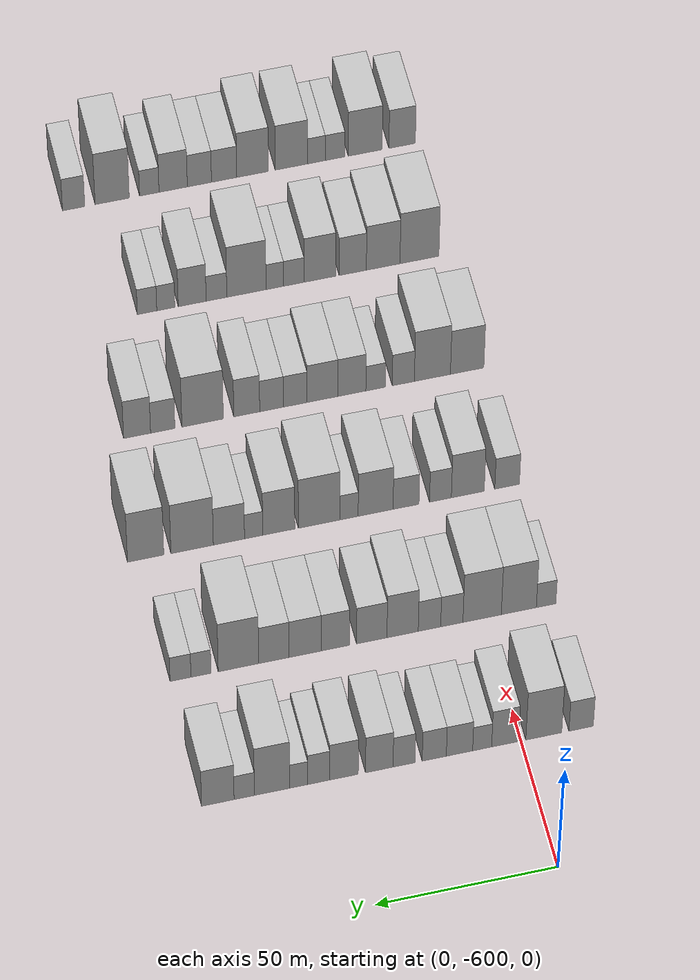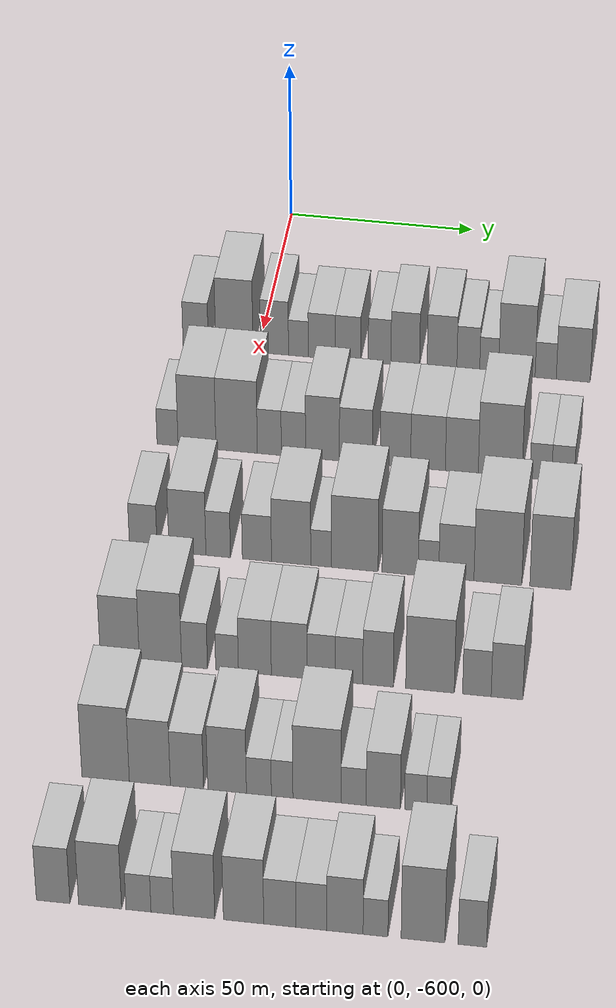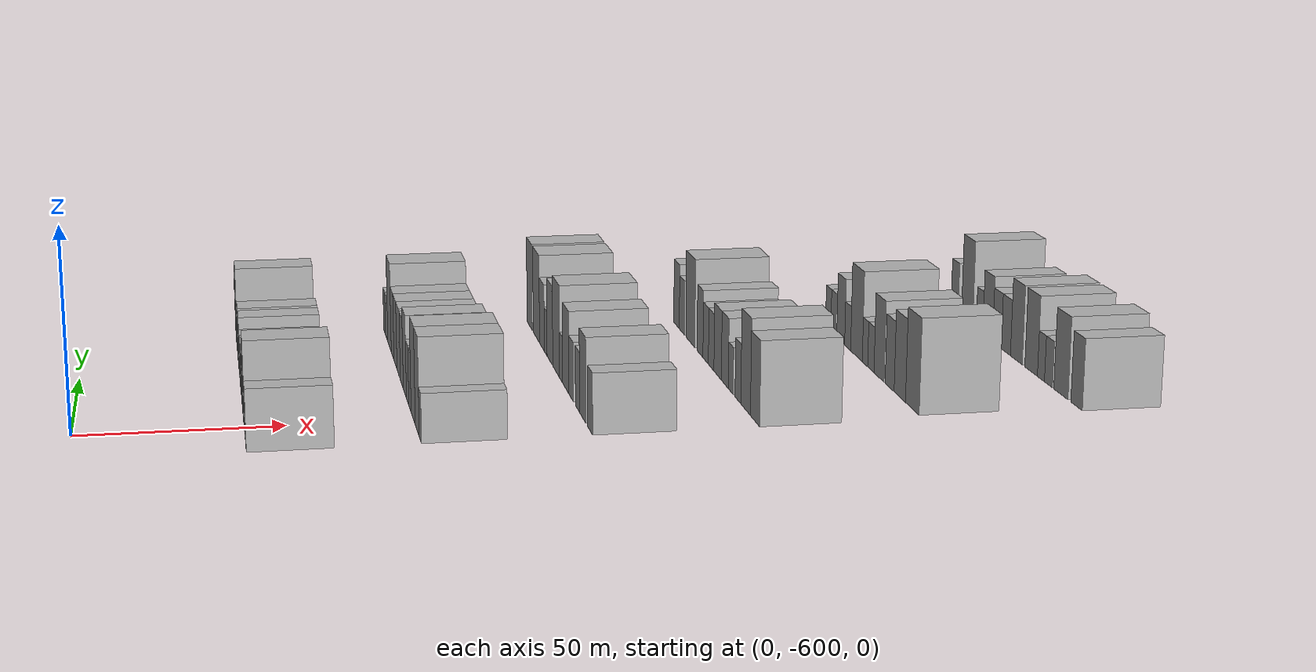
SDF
<sdf version="1.6">
 <world name="default">
  <model name="building_1">
   <static>1</static>
   <pose>50.0000 -616.6186 0 0.000000 0.000000 0.000000</pose>
   <link name="link">
    <pose>0 0 7.50 0 0 0</pose>
    <collision name="collision"><geometry><box><size>20.0000 6.7628 15.0000</size></box></geometry></collision>
    <visual name="visual">
     <cast_shadows>0</cast_shadows>
     <geometry><box><size>20.0000 6.7628 15.0000</size></box></geometry>
     <material>
      <script>
       <uri>model://HANNAS_wall/materials/scripts</uri>
       <uri>model://HANNAS_wall/materials/textures</uri>
       <name>vrc/HANNAS_wall</name>
      </script>
     </material>
    </visual>
   </link>
  </model>
  <model name="building_2">
   <static>1</static>
   <pose>50.0000 -606.2549 0 0.000000 0.000000 0.000000</pose>
   <link name="link">
    <pose>0 0 12.00 0 0 0</pose>
    <collision name="collision"><geometry><box><size>20.0000 9.9646 24.0000</size></box></geometry></collision>
    <visual name="visual">
     <cast_shadows>0</cast_shadows>
     <geometry><box><size>20.0000 9.9646 24.0000</size></box></geometry>
     <material>
      <script>
       <uri>model://HANNAS_wall/materials/scripts</uri>
       <uri>model://HANNAS_wall/materials/textures</uri>
       <name>vrc/HANNAS_wall</name>
      </script>
     </material>
    </visual>
   </link>
  </model>
  <model name="building_3">
   <static>1</static>
   <pose>50.0000 -595.5343 0 0.000000 0.000000 0.000000</pose>
   <link name="link">
    <pose>0 0 9.00 0 0 0</pose>
    <collision name="collision"><geometry><box><size>20.0000 7.4766 18.0000</size></box></geometry></collision>
    <visual name="visual">
     <cast_shadows>0</cast_shadows>
     <geometry><box><size>20.0000 7.4766 18.0000</size></box></geometry>
     <material>
      <script>
       <uri>model://HANNAS_wall/materials/scripts</uri>
       <uri>model://HANNAS_wall/materials/textures</uri>
       <name>vrc/HANNAS_wall</name>
      </script>
     </material>
    </visual>
   </link>
  </model>
  <model name="building_4">
   <static>1</static>
   <pose>50.0000 -589.1701 0 0.000000 0.000000 0.000000</pose>
   <link name="link">
    <pose>0 0 6.00 0 0 0</pose>
    <collision name="collision"><geometry><box><size>20.0000 5.2517 12.0000</size></box></geometry></collision>
    <visual name="visual">
     <cast_shadows>0</cast_shadows>
     <geometry><box><size>20.0000 5.2517 12.0000</size></box></geometry>
     <material>
      <script>
       <uri>model://HANNAS_wall/materials/scripts</uri>
       <uri>model://HANNAS_wall/materials/textures</uri>
       <name>vrc/HANNAS_wall</name>
      </script>
     </material>
    </visual>
   </link>
  </model>
  <model name="building_5">
   <static>1</static>
   <pose>50.0000 -582.9045 0 0.000000 0.000000 0.000000</pose>
   <link name="link">
    <pose>0 0 7.50 0 0 0</pose>
    <collision name="collision"><geometry><box><size>20.0000 7.2797 15.0000</size></box></geometry></collision>
    <visual name="visual">
     <cast_shadows>0</cast_shadows>
     <geometry><box><size>20.0000 7.2797 15.0000</size></box></geometry>
     <material>
      <script>
       <uri>model://HANNAS_wall/materials/scripts</uri>
       <uri>model://HANNAS_wall/materials/textures</uri>
       <name>vrc/HANNAS_wall</name>
      </script>
     </material>
    </visual>
   </link>
  </model>
  <model name="building_6">
   <static>1</static>
   <pose>50.0000 -575.9274 0 0.000000 0.000000 0.000000</pose>
   <link name="link">
    <pose>0 0 7.50 0 0 0</pose>
    <collision name="collision"><geometry><box><size>20.0000 6.6745 15.0000</size></box></geometry></collision>
    <visual name="visual">
     <cast_shadows>0</cast_shadows>
     <geometry><box><size>20.0000 6.6745 15.0000</size></box></geometry>
     <material>
      <script>
       <uri>model://HANNAS_wall/materials/scripts</uri>
       <uri>model://HANNAS_wall/materials/textures</uri>
       <name>vrc/HANNAS_wall</name>
      </script>
     </material>
    </visual>
   </link>
  </model>
  <model name="building_7">
   <static>1</static>
   <pose>50.0000 -567.5688 0 0.000000 0.000000 0.000000</pose>
   <link name="link">
    <pose>0 0 7.50 0 0 0</pose>
    <collision name="collision"><geometry><box><size>20.0000 6.0427 15.0000</size></box></geometry></collision>
    <visual name="visual">
     <cast_shadows>0</cast_shadows>
     <geometry><box><size>20.0000 6.0427 15.0000</size></box></geometry>
     <material>
      <script>
       <uri>model://HANNAS_wall/materials/scripts</uri>
       <uri>model://HANNAS_wall/materials/textures</uri>
       <name>vrc/HANNAS_wall</name>
      </script>
     </material>
    </visual>
   </link>
  </model>
  <model name="building_8">
   <static>1</static>
   <pose>50.0000 -560.7549 0 0.000000 0.000000 0.000000</pose>
   <link name="link">
    <pose>0 0 9.00 0 0 0</pose>
    <collision name="collision"><geometry><box><size>20.0000 7.5851 18.0000</size></box></geometry></collision>
    <visual name="visual">
     <cast_shadows>0</cast_shadows>
     <geometry><box><size>20.0000 7.5851 18.0000</size></box></geometry>
     <material>
      <script>
       <uri>model://HANNAS_wall/materials/scripts</uri>
       <uri>model://HANNAS_wall/materials/textures</uri>
       <name>vrc/HANNAS_wall</name>
      </script>
     </material>
    </visual>
   </link>
  </model>
  <model name="building_9">
   <static>1</static>
   <pose>50.0000 -551.0288 0 0.000000 0.000000 0.000000</pose>
   <link name="link">
    <pose>0 0 9.00 0 0 0</pose>
    <collision name="collision"><geometry><box><size>20.0000 7.8670 18.0000</size></box></geometry></collision>
    <visual name="visual">
     <cast_shadows>0</cast_shadows>
     <geometry><box><size>20.0000 7.8670 18.0000</size></box></geometry>
     <material>
      <script>
       <uri>model://HANNAS_wall/materials/scripts</uri>
       <uri>model://HANNAS_wall/materials/textures</uri>
       <name>vrc/HANNAS_wall</name>
      </script>
     </material>
    </visual>
   </link>
  </model>
  <model name="building_10">
   <static>1</static>
   <pose>50.0000 -544.0765 0 0.000000 0.000000 0.000000</pose>
   <link name="link">
    <pose>0 0 7.50 0 0 0</pose>
    <collision name="collision"><geometry><box><size>20.0000 6.0376 15.0000</size></box></geometry></collision>
    <visual name="visual">
     <cast_shadows>0</cast_shadows>
     <geometry><box><size>20.0000 6.0376 15.0000</size></box></geometry>
     <material>
      <script>
       <uri>model://HANNAS_wall/materials/scripts</uri>
       <uri>model://HANNAS_wall/materials/textures</uri>
       <name>vrc/HANNAS_wall</name>
      </script>
     </material>
    </visual>
   </link>
  </model>
  <model name="building_11">
   <static>1</static>
   <pose>50.0000 -538.5596 0 0.000000 0.000000 0.000000</pose>
   <link name="link">
    <pose>0 0 6.00 0 0 0</pose>
    <collision name="collision"><geometry><box><size>20.0000 4.9962 12.0000</size></box></geometry></collision>
    <visual name="visual">
     <cast_shadows>0</cast_shadows>
     <geometry><box><size>20.0000 4.9962 12.0000</size></box></geometry>
     <material>
      <script>
       <uri>model://HANNAS_wall/materials/scripts</uri>
       <uri>model://HANNAS_wall/materials/textures</uri>
       <name>vrc/HANNAS_wall</name>
      </script>
     </material>
    </visual>
   </link>
  </model>
  <model name="building_12">
   <static>1</static>
   <pose>50.0000 -531.2493 0 0.000000 0.000000 0.000000</pose>
   <link name="link">
    <pose>0 0 12.00 0 0 0</pose>
    <collision name="collision"><geometry><box><size>20.0000 9.6245 24.0000</size></box></geometry></collision>
    <visual name="visual">
     <cast_shadows>0</cast_shadows>
     <geometry><box><size>20.0000 9.6245 24.0000</size></box></geometry>
     <material>
      <script>
       <uri>model://HANNAS_wall/materials/scripts</uri>
       <uri>model://HANNAS_wall/materials/textures</uri>
       <name>vrc/HANNAS_wall</name>
      </script>
     </material>
    </visual>
   </link>
  </model>
  <model name="building_13">
   <static>1</static>
   <pose>50.0000 -523.6492 0 0.000000 0.000000 0.000000</pose>
   <link name="link">
    <pose>0 0 6.00 0 0 0</pose>
    <collision name="collision"><geometry><box><size>20.0000 5.5758 12.0000</size></box></geometry></collision>
    <visual name="visual">
     <cast_shadows>0</cast_shadows>
     <geometry><box><size>20.0000 5.5758 12.0000</size></box></geometry>
     <material>
      <script>
       <uri>model://HANNAS_wall/materials/scripts</uri>
       <uri>model://HANNAS_wall/materials/textures</uri>
       <name>vrc/HANNAS_wall</name>
      </script>
     </material>
    </visual>
   </link>
  </model>
  <model name="building_14">
   <static>1</static>
   <pose>50.0000 -516.4085 0 0.000000 0.000000 0.000000</pose>
   <link name="link">
    <pose>0 0 9.00 0 0 0</pose>
    <collision name="collision"><geometry><box><size>20.0000 8.9057 18.0000</size></box></geometry></collision>
    <visual name="visual">
     <cast_shadows>0</cast_shadows>
     <geometry><box><size>20.0000 8.9057 18.0000</size></box></geometry>
     <material>
      <script>
       <uri>model://HANNAS_wall/materials/scripts</uri>
       <uri>model://HANNAS_wall/materials/textures</uri>
       <name>vrc/HANNAS_wall</name>
      </script>
     </material>
    </visual>
   </link>
  </model>
  <model name="building_136">
   <static>1</static>
   <pose>90.0000 -617.2588 0 0.000000 0.000000 0.000000</pose>
   <link name="link">
    <pose>0 0 6.00 0 0 0</pose>
    <collision name="collision"><geometry><box><size>20.0000 5.4825 12.0000</size></box></geometry></collision>
    <visual name="visual">
     <cast_shadows>0</cast_shadows>
     <geometry><box><size>20.0000 5.4825 12.0000</size></box></geometry>
     <material>
      <script>
       <uri>model://HANNAS_wall/materials/scripts</uri>
       <uri>model://HANNAS_wall/materials/textures</uri>
       <name>vrc/HANNAS_wall</name>
      </script>
     </material>
    </visual>
   </link>
  </model>
  <model name="building_137">
   <static>1</static>
   <pose>90.0000 -609.5880 0 0.000000 0.000000 0.000000</pose>
   <link name="link">
    <pose>0 0 12.00 0 0 0</pose>
    <collision name="collision"><geometry><box><size>20.0000 9.8591 24.0000</size></box></geometry></collision>
    <visual name="visual">
     <cast_shadows>0</cast_shadows>
     <geometry><box><size>20.0000 9.8591 24.0000</size></box></geometry>
     <material>
      <script>
       <uri>model://HANNAS_wall/materials/scripts</uri>
       <uri>model://HANNAS_wall/materials/textures</uri>
       <name>vrc/HANNAS_wall</name>
      </script>
     </material>
    </visual>
   </link>
  </model>
  <model name="building_138">
   <static>1</static>
   <pose>90.0000 -599.2762 0 0.000000 0.000000 0.000000</pose>
   <link name="link">
    <pose>0 0 12.00 0 0 0</pose>
    <collision name="collision"><geometry><box><size>20.0000 10.7645 24.0000</size></box></geometry></collision>
    <visual name="visual">
     <cast_shadows>0</cast_shadows>
     <geometry><box><size>20.0000 10.7645 24.0000</size></box></geometry>
     <material>
      <script>
       <uri>model://HANNAS_wall/materials/scripts</uri>
       <uri>model://HANNAS_wall/materials/textures</uri>
       <name>vrc/HANNAS_wall</name>
      </script>
     </material>
    </visual>
   </link>
  </model>
  <model name="building_139">
   <static>1</static>
   <pose>90.0000 -590.7777 0 0.000000 0.000000 0.000000</pose>
   <link name="link">
    <pose>0 0 7.50 0 0 0</pose>
    <collision name="collision"><geometry><box><size>20.0000 6.2324 15.0000</size></box></geometry></collision>
    <visual name="visual">
     <cast_shadows>0</cast_shadows>
     <geometry><box><size>20.0000 6.2324 15.0000</size></box></geometry>
     <material>
      <script>
       <uri>model://HANNAS_wall/materials/scripts</uri>
       <uri>model://HANNAS_wall/materials/textures</uri>
       <name>vrc/HANNAS_wall</name>
      </script>
     </material>
    </visual>
   </link>
  </model>
  <model name="building_140">
   <static>1</static>
   <pose>90.0000 -584.5179 0 0.000000 0.000000 0.000000</pose>
   <link name="link">
    <pose>0 0 7.50 0 0 0</pose>
    <collision name="collision"><geometry><box><size>20.0000 6.2872 15.0000</size></box></geometry></collision>
    <visual name="visual">
     <cast_shadows>0</cast_shadows>
     <geometry><box><size>20.0000 6.2872 15.0000</size></box></geometry>
     <material>
      <script>
       <uri>model://HANNAS_wall/materials/scripts</uri>
       <uri>model://HANNAS_wall/materials/textures</uri>
       <name>vrc/HANNAS_wall</name>
      </script>
     </material>
    </visual>
   </link>
  </model>
  <model name="building_141">
   <static>1</static>
   <pose>90.0000 -576.9947 0 0.000000 0.000000 0.000000</pose>
   <link name="link">
    <pose>0 0 10.50 0 0 0</pose>
    <collision name="collision"><geometry><box><size>20.0000 8.7592 21.0000</size></box></geometry></collision>
    <visual name="visual">
     <cast_shadows>0</cast_shadows>
     <geometry><box><size>20.0000 8.7592 21.0000</size></box></geometry>
     <material>
      <script>
       <uri>model://HANNAS_wall/materials/scripts</uri>
       <uri>model://HANNAS_wall/materials/textures</uri>
       <name>vrc/HANNAS_wall</name>
      </script>
     </material>
    </visual>
   </link>
  </model>
  <model name="building_142">
   <static>1</static>
   <pose>90.0000 -568.3721 0 0.000000 0.000000 0.000000</pose>
   <link name="link">
    <pose>0 0 9.00 0 0 0</pose>
    <collision name="collision"><geometry><box><size>20.0000 8.4860 18.0000</size></box></geometry></collision>
    <visual name="visual">
     <cast_shadows>0</cast_shadows>
     <geometry><box><size>20.0000 8.4860 18.0000</size></box></geometry>
     <material>
      <script>
       <uri>model://HANNAS_wall/materials/scripts</uri>
       <uri>model://HANNAS_wall/materials/textures</uri>
       <name>vrc/HANNAS_wall</name>
      </script>
     </material>
    </visual>
   </link>
  </model>
  <model name="building_143">
   <static>1</static>
   <pose>90.0000 -558.1971 0 0.000000 0.000000 0.000000</pose>
   <link name="link">
    <pose>0 0 9.00 0 0 0</pose>
    <collision name="collision"><geometry><box><size>20.0000 7.8641 18.0000</size></box></geometry></collision>
    <visual name="visual">
     <cast_shadows>0</cast_shadows>
     <geometry><box><size>20.0000 7.8641 18.0000</size></box></geometry>
     <material>
      <script>
       <uri>model://HANNAS_wall/materials/scripts</uri>
       <uri>model://HANNAS_wall/materials/textures</uri>
       <name>vrc/HANNAS_wall</name>
      </script>
     </material>
    </visual>
   </link>
  </model>
  <model name="building_144">
   <static>1</static>
   <pose>90.0000 -549.7999 0 0.000000 0.000000 0.000000</pose>
   <link name="link">
    <pose>0 0 9.00 0 0 0</pose>
    <collision name="collision"><geometry><box><size>20.0000 8.9302 18.0000</size></box></geometry></collision>
    <visual name="visual">
     <cast_shadows>0</cast_shadows>
     <geometry><box><size>20.0000 8.9302 18.0000</size></box></geometry>
     <material>
      <script>
       <uri>model://HANNAS_wall/materials/scripts</uri>
       <uri>model://HANNAS_wall/materials/textures</uri>
       <name>vrc/HANNAS_wall</name>
      </script>
     </material>
    </visual>
   </link>
  </model>
  <model name="building_145">
   <static>1</static>
   <pose>90.0000 -541.1015 0 0.000000 0.000000 0.000000</pose>
   <link name="link">
    <pose>0 0 9.00 0 0 0</pose>
    <collision name="collision"><geometry><box><size>20.0000 8.4665 18.0000</size></box></geometry></collision>
    <visual name="visual">
     <cast_shadows>0</cast_shadows>
     <geometry><box><size>20.0000 8.4665 18.0000</size></box></geometry>
     <material>
      <script>
       <uri>model://HANNAS_wall/materials/scripts</uri>
       <uri>model://HANNAS_wall/materials/textures</uri>
       <name>vrc/HANNAS_wall</name>
      </script>
     </material>
    </visual>
   </link>
  </model>
  <model name="building_146">
   <static>1</static>
   <pose>90.0000 -531.2532 0 0.000000 0.000000 0.000000</pose>
   <link name="link">
    <pose>0 0 12.00 0 0 0</pose>
    <collision name="collision"><geometry><box><size>20.0000 11.2301 24.0000</size></box></geometry></collision>
    <visual name="visual">
     <cast_shadows>0</cast_shadows>
     <geometry><box><size>20.0000 11.2301 24.0000</size></box></geometry>
     <material>
      <script>
       <uri>model://HANNAS_wall/materials/scripts</uri>
       <uri>model://HANNAS_wall/materials/textures</uri>
       <name>vrc/HANNAS_wall</name>
      </script>
     </material>
    </visual>
   </link>
  </model>
  <model name="building_147">
   <static>1</static>
   <pose>90.0000 -520.8524 0 0.000000 0.000000 0.000000</pose>
   <link name="link">
    <pose>0 0 6.00 0 0 0</pose>
    <collision name="collision"><geometry><box><size>20.0000 5.5713 12.0000</size></box></geometry></collision>
    <visual name="visual">
     <cast_shadows>0</cast_shadows>
     <geometry><box><size>20.0000 5.5713 12.0000</size></box></geometry>
     <material>
      <script>
       <uri>model://HANNAS_wall/materials/scripts</uri>
       <uri>model://HANNAS_wall/materials/textures</uri>
       <name>vrc/HANNAS_wall</name>
      </script>
     </material>
    </visual>
   </link>
  </model>
  <model name="building_148">
   <static>1</static>
   <pose>90.0000 -515.1701 0 0.000000 0.000000 0.000000</pose>
   <link name="link">
    <pose>0 0 6.00 0 0 0</pose>
    <collision name="collision"><geometry><box><size>20.0000 5.7933 12.0000</size></box></geometry></collision>
    <visual name="visual">
     <cast_shadows>0</cast_shadows>
     <geometry><box><size>20.0000 5.7933 12.0000</size></box></geometry>
     <material>
      <script>
       <uri>model://HANNAS_wall/materials/scripts</uri>
       <uri>model://HANNAS_wall/materials/textures</uri>
       <name>vrc/HANNAS_wall</name>
      </script>
     </material>
    </visual>
   </link>
  </model>
  <model name="building_271">
   <static>1</static>
   <pose>130.0000 -616.4976 0 0.000000 0.000000 0.000000</pose>
   <link name="link">
    <pose>0 0 7.50 0 0 0</pose>
    <collision name="collision"><geometry><box><size>20.0000 7.0047 15.0000</size></box></geometry></collision>
    <visual name="visual">
     <cast_shadows>0</cast_shadows>
     <geometry><box><size>20.0000 7.0047 15.0000</size></box></geometry>
     <material>
      <script>
       <uri>model://HANNAS_wall/materials/scripts</uri>
       <uri>model://HANNAS_wall/materials/textures</uri>
       <name>vrc/HANNAS_wall</name>
      </script>
     </material>
    </visual>
   </link>
  </model>
  <model name="building_272">
   <static>1</static>
   <pose>130.0000 -605.3198 0 0.000000 0.000000 0.000000</pose>
   <link name="link">
    <pose>0 0 10.50 0 0 0</pose>
    <collision name="collision"><geometry><box><size>20.0000 9.3511 21.0000</size></box></geometry></collision>
    <visual name="visual">
     <cast_shadows>0</cast_shadows>
     <geometry><box><size>20.0000 9.3511 21.0000</size></box></geometry>
     <material>
      <script>
       <uri>model://HANNAS_wall/materials/scripts</uri>
       <uri>model://HANNAS_wall/materials/textures</uri>
       <name>vrc/HANNAS_wall</name>
      </script>
     </material>
    </visual>
   </link>
  </model>
  <model name="building_273">
   <static>1</static>
   <pose>130.0000 -597.5497 0 0.000000 0.000000 0.000000</pose>
   <link name="link">
    <pose>0 0 7.50 0 0 0</pose>
    <collision name="collision"><geometry><box><size>20.0000 6.1891 15.0000</size></box></geometry></collision>
    <visual name="visual">
     <cast_shadows>0</cast_shadows>
     <geometry><box><size>20.0000 6.1891 15.0000</size></box></geometry>
     <material>
      <script>
       <uri>model://HANNAS_wall/materials/scripts</uri>
       <uri>model://HANNAS_wall/materials/textures</uri>
       <name>vrc/HANNAS_wall</name>
      </script>
     </material>
    </visual>
   </link>
  </model>
  <model name="building_274">
   <static>1</static>
   <pose>130.0000 -587.7822 0 0.000000 0.000000 0.000000</pose>
   <link name="link">
    <pose>0 0 7.50 0 0 0</pose>
    <collision name="collision"><geometry><box><size>20.0000 7.3459 15.0000</size></box></geometry></collision>
    <visual name="visual">
     <cast_shadows>0</cast_shadows>
     <geometry><box><size>20.0000 7.3459 15.0000</size></box></geometry>
     <material>
      <script>
       <uri>model://HANNAS_wall/materials/scripts</uri>
       <uri>model://HANNAS_wall/materials/textures</uri>
       <name>vrc/HANNAS_wall</name>
      </script>
     </material>
    </visual>
   </link>
  </model>
  <model name="building_275">
   <static>1</static>
   <pose>130.0000 -579.1664 0 0.000000 0.000000 0.000000</pose>
   <link name="link">
    <pose>0 0 10.50 0 0 0</pose>
    <collision name="collision"><geometry><box><size>20.0000 9.8856 21.0000</size></box></geometry></collision>
    <visual name="visual">
     <cast_shadows>0</cast_shadows>
     <geometry><box><size>20.0000 9.8856 21.0000</size></box></geometry>
     <material>
      <script>
       <uri>model://HANNAS_wall/materials/scripts</uri>
       <uri>model://HANNAS_wall/materials/textures</uri>
       <name>vrc/HANNAS_wall</name>
      </script>
     </material>
    </visual>
   </link>
  </model>
  <model name="building_276">
   <static>1</static>
   <pose>130.0000 -571.6178 0 0.000000 0.000000 0.000000</pose>
   <link name="link">
    <pose>0 0 6.00 0 0 0</pose>
    <collision name="collision"><geometry><box><size>20.0000 5.2117 12.0000</size></box></geometry></collision>
    <visual name="visual">
     <cast_shadows>0</cast_shadows>
     <geometry><box><size>20.0000 5.2117 12.0000</size></box></geometry>
     <material>
      <script>
       <uri>model://HANNAS_wall/materials/scripts</uri>
       <uri>model://HANNAS_wall/materials/textures</uri>
       <name>vrc/HANNAS_wall</name>
      </script>
     </material>
    </visual>
   </link>
  </model>
  <model name="building_277">
   <static>1</static>
   <pose>130.0000 -563.1687 0 0.000000 0.000000 0.000000</pose>
   <link name="link">
    <pose>0 0 12.00 0 0 0</pose>
    <collision name="collision"><geometry><box><size>20.0000 11.6866 24.0000</size></box></geometry></collision>
    <visual name="visual">
     <cast_shadows>0</cast_shadows>
     <geometry><box><size>20.0000 11.6866 24.0000</size></box></geometry>
     <material>
      <script>
       <uri>model://HANNAS_wall/materials/scripts</uri>
       <uri>model://HANNAS_wall/materials/textures</uri>
       <name>vrc/HANNAS_wall</name>
      </script>
     </material>
    </visual>
   </link>
  </model>
  <model name="building_278">
   <static>1</static>
   <pose>130.0000 -551.8053 0 0.000000 0.000000 0.000000</pose>
   <link name="link">
    <pose>0 0 10.50 0 0 0</pose>
    <collision name="collision"><geometry><box><size>20.0000 9.0402 21.0000</size></box></geometry></collision>
    <visual name="visual">
     <cast_shadows>0</cast_shadows>
     <geometry><box><size>20.0000 9.0402 21.0000</size></box></geometry>
     <material>
      <script>
       <uri>model://HANNAS_wall/materials/scripts</uri>
       <uri>model://HANNAS_wall/materials/textures</uri>
       <name>vrc/HANNAS_wall</name>
      </script>
     </material>
    </visual>
   </link>
  </model>
  <model name="building_279">
   <static>1</static>
   <pose>130.0000 -544.7205 0 0.000000 0.000000 0.000000</pose>
   <link name="link">
    <pose>0 0 6.00 0 0 0</pose>
    <collision name="collision"><geometry><box><size>20.0000 5.1295 12.0000</size></box></geometry></collision>
    <visual name="visual">
     <cast_shadows>0</cast_shadows>
     <geometry><box><size>20.0000 5.1295 12.0000</size></box></geometry>
     <material>
      <script>
       <uri>model://HANNAS_wall/materials/scripts</uri>
       <uri>model://HANNAS_wall/materials/textures</uri>
       <name>vrc/HANNAS_wall</name>
      </script>
     </material>
    </visual>
   </link>
  </model>
  <model name="building_280">
   <static>1</static>
   <pose>130.0000 -537.7707 0 0.000000 0.000000 0.000000</pose>
   <link name="link">
    <pose>0 0 9.00 0 0 0</pose>
    <collision name="collision"><geometry><box><size>20.0000 8.7700 18.0000</size></box></geometry></collision>
    <visual name="visual">
     <cast_shadows>0</cast_shadows>
     <geometry><box><size>20.0000 8.7700 18.0000</size></box></geometry>
     <material>
      <script>
       <uri>model://HANNAS_wall/materials/scripts</uri>
       <uri>model://HANNAS_wall/materials/textures</uri>
       <name>vrc/HANNAS_wall</name>
      </script>
     </material>
    </visual>
   </link>
  </model>
  <model name="building_281">
   <static>1</static>
   <pose>130.0000 -527.4270 0 0.000000 0.000000 0.000000</pose>
   <link name="link">
    <pose>0 0 12.00 0 0 0</pose>
    <collision name="collision"><geometry><box><size>20.0000 11.9174 24.0000</size></box></geometry></collision>
    <visual name="visual">
     <cast_shadows>0</cast_shadows>
     <geometry><box><size>20.0000 11.9174 24.0000</size></box></geometry>
     <material>
      <script>
       <uri>model://HANNAS_wall/materials/scripts</uri>
       <uri>model://HANNAS_wall/materials/textures</uri>
       <name>vrc/HANNAS_wall</name>
      </script>
     </material>
    </visual>
   </link>
  </model>
  <model name="building_282">
   <static>1</static>
   <pose>130.0000 -514.3792 0 0.000000 0.000000 0.000000</pose>
   <link name="link">
    <pose>0 0 12.00 0 0 0</pose>
    <collision name="collision"><geometry><box><size>20.0000 10.1782 24.0000</size></box></geometry></collision>
    <visual name="visual">
     <cast_shadows>0</cast_shadows>
     <geometry><box><size>20.0000 10.1782 24.0000</size></box></geometry>
     <material>
      <script>
       <uri>model://HANNAS_wall/materials/scripts</uri>
       <uri>model://HANNAS_wall/materials/textures</uri>
       <name>vrc/HANNAS_wall</name>
      </script>
     </material>
    </visual>
   </link>
  </model>
  <model name="building_402">
   <static>1</static>
   <pose>170.0000 -615.1898 0 0.000000 0.000000 0.000000</pose>
   <link name="link">
    <pose>0 0 10.50 0 0 0</pose>
    <collision name="collision"><geometry><box><size>20.0000 9.6204 21.0000</size></box></geometry></collision>
    <visual name="visual">
     <cast_shadows>0</cast_shadows>
     <geometry><box><size>20.0000 9.6204 21.0000</size></box></geometry>
     <material>
      <script>
       <uri>model://HANNAS_wall/materials/scripts</uri>
       <uri>model://HANNAS_wall/materials/textures</uri>
       <name>vrc/HANNAS_wall</name>
      </script>
     </material>
    </visual>
   </link>
  </model>
  <model name="building_403">
   <static>1</static>
   <pose>170.0000 -605.1904 0 0.000000 0.000000 0.000000</pose>
   <link name="link">
    <pose>0 0 12.00 0 0 0</pose>
    <collision name="collision"><geometry><box><size>20.0000 10.3783 24.0000</size></box></geometry></collision>
    <visual name="visual">
     <cast_shadows>0</cast_shadows>
     <geometry><box><size>20.0000 10.3783 24.0000</size></box></geometry>
     <material>
      <script>
       <uri>model://HANNAS_wall/materials/scripts</uri>
       <uri>model://HANNAS_wall/materials/textures</uri>
       <name>vrc/HANNAS_wall</name>
      </script>
     </material>
    </visual>
   </link>
  </model>
  <model name="building_404">
   <static>1</static>
   <pose>170.0000 -596.8305 0 0.000000 0.000000 0.000000</pose>
   <link name="link">
    <pose>0 0 7.50 0 0 0</pose>
    <collision name="collision"><geometry><box><size>20.0000 6.3415 15.0000</size></box></geometry></collision>
    <visual name="visual">
     <cast_shadows>0</cast_shadows>
     <geometry><box><size>20.0000 6.3415 15.0000</size></box></geometry>
     <material>
      <script>
       <uri>model://HANNAS_wall/materials/scripts</uri>
       <uri>model://HANNAS_wall/materials/textures</uri>
       <name>vrc/HANNAS_wall</name>
      </script>
     </material>
    </visual>
   </link>
  </model>
  <model name="building_405">
   <static>1</static>
   <pose>170.0000 -588.8700 0 0.000000 0.000000 0.000000</pose>
   <link name="link">
    <pose>0 0 6.00 0 0 0</pose>
    <collision name="collision"><geometry><box><size>20.0000 5.5795 12.0000</size></box></geometry></collision>
    <visual name="visual">
     <cast_shadows>0</cast_shadows>
     <geometry><box><size>20.0000 5.5795 12.0000</size></box></geometry>
     <material>
      <script>
       <uri>model://HANNAS_wall/materials/scripts</uri>
       <uri>model://HANNAS_wall/materials/textures</uri>
       <name>vrc/HANNAS_wall</name>
      </script>
     </material>
    </visual>
   </link>
  </model>
  <model name="building_406">
   <static>1</static>
   <pose>170.0000 -582.0565 0 0.000000 0.000000 0.000000</pose>
   <link name="link">
    <pose>0 0 9.00 0 0 0</pose>
    <collision name="collision"><geometry><box><size>20.0000 8.0476 18.0000</size></box></geometry></collision>
    <visual name="visual">
     <cast_shadows>0</cast_shadows>
     <geometry><box><size>20.0000 8.0476 18.0000</size></box></geometry>
     <material>
      <script>
       <uri>model://HANNAS_wall/materials/scripts</uri>
       <uri>model://HANNAS_wall/materials/textures</uri>
       <name>vrc/HANNAS_wall</name>
      </script>
     </material>
    </visual>
   </link>
  </model>
  <model name="building_407">
   <static>1</static>
   <pose>170.0000 -573.6332 0 0.000000 0.000000 0.000000</pose>
   <link name="link">
    <pose>0 0 9.00 0 0 0</pose>
    <collision name="collision"><geometry><box><size>20.0000 8.7991 18.0000</size></box></geometry></collision>
    <visual name="visual">
     <cast_shadows>0</cast_shadows>
     <geometry><box><size>20.0000 8.7991 18.0000</size></box></geometry>
     <material>
      <script>
       <uri>model://HANNAS_wall/materials/scripts</uri>
       <uri>model://HANNAS_wall/materials/textures</uri>
       <name>vrc/HANNAS_wall</name>
      </script>
     </material>
    </visual>
   </link>
  </model>
  <model name="building_408">
   <static>1</static>
   <pose>170.0000 -565.8480 0 0.000000 0.000000 0.000000</pose>
   <link name="link">
    <pose>0 0 7.50 0 0 0</pose>
    <collision name="collision"><geometry><box><size>20.0000 6.7712 15.0000</size></box></geometry></collision>
    <visual name="visual">
     <cast_shadows>0</cast_shadows>
     <geometry><box><size>20.0000 6.7712 15.0000</size></box></geometry>
     <material>
      <script>
       <uri>model://HANNAS_wall/materials/scripts</uri>
       <uri>model://HANNAS_wall/materials/textures</uri>
       <name>vrc/HANNAS_wall</name>
      </script>
     </material>
    </visual>
   </link>
  </model>
  <model name="building_409">
   <static>1</static>
   <pose>170.0000 -559.0835 0 0.000000 0.000000 0.000000</pose>
   <link name="link">
    <pose>0 0 7.50 0 0 0</pose>
    <collision name="collision"><geometry><box><size>20.0000 6.7577 15.0000</size></box></geometry></collision>
    <visual name="visual">
     <cast_shadows>0</cast_shadows>
     <geometry><box><size>20.0000 6.7577 15.0000</size></box></geometry>
     <material>
      <script>
       <uri>model://HANNAS_wall/materials/scripts</uri>
       <uri>model://HANNAS_wall/materials/textures</uri>
       <name>vrc/HANNAS_wall</name>
      </script>
     </material>
    </visual>
   </link>
  </model>
  <model name="building_410">
   <static>1</static>
   <pose>170.0000 -552.0103 0 0.000000 0.000000 0.000000</pose>
   <link name="link">
    <pose>0 0 9.00 0 0 0</pose>
    <collision name="collision"><geometry><box><size>20.0000 7.3888 18.0000</size></box></geometry></collision>
    <visual name="visual">
     <cast_shadows>0</cast_shadows>
     <geometry><box><size>20.0000 7.3888 18.0000</size></box></geometry>
     <material>
      <script>
       <uri>model://HANNAS_wall/materials/scripts</uri>
       <uri>model://HANNAS_wall/materials/textures</uri>
       <name>vrc/HANNAS_wall</name>
      </script>
     </material>
    </visual>
   </link>
  </model>
  <model name="building_411">
   <static>1</static>
   <pose>170.0000 -539.4278 0 0.000000 0.000000 0.000000</pose>
   <link name="link">
    <pose>0 0 12.00 0 0 0</pose>
    <collision name="collision"><geometry><box><size>20.0000 11.7761 24.0000</size></box></geometry></collision>
    <visual name="visual">
     <cast_shadows>0</cast_shadows>
     <geometry><box><size>20.0000 11.7761 24.0000</size></box></geometry>
     <material>
      <script>
       <uri>model://HANNAS_wall/materials/scripts</uri>
       <uri>model://HANNAS_wall/materials/textures</uri>
       <name>vrc/HANNAS_wall</name>
      </script>
     </material>
    </visual>
   </link>
  </model>
  <model name="building_412">
   <static>1</static>
   <pose>170.0000 -528.0808 0 0.000000 0.000000 0.000000</pose>
   <link name="link">
    <pose>0 0 7.50 0 0 0</pose>
    <collision name="collision"><geometry><box><size>20.0000 6.9179 15.0000</size></box></geometry></collision>
    <visual name="visual">
     <cast_shadows>0</cast_shadows>
     <geometry><box><size>20.0000 6.9179 15.0000</size></box></geometry>
     <material>
      <script>
       <uri>model://HANNAS_wall/materials/scripts</uri>
       <uri>model://HANNAS_wall/materials/textures</uri>
       <name>vrc/HANNAS_wall</name>
      </script>
     </material>
    </visual>
   </link>
  </model>
  <model name="building_413">
   <static>1</static>
   <pose>170.0000 -520.7925 0 0.000000 0.000000 0.000000</pose>
   <link name="link">
    <pose>0 0 9.00 0 0 0</pose>
    <collision name="collision"><geometry><box><size>20.0000 7.6586 18.0000</size></box></geometry></collision>
    <visual name="visual">
     <cast_shadows>0</cast_shadows>
     <geometry><box><size>20.0000 7.6586 18.0000</size></box></geometry>
     <material>
      <script>
       <uri>model://HANNAS_wall/materials/scripts</uri>
       <uri>model://HANNAS_wall/materials/textures</uri>
       <name>vrc/HANNAS_wall</name>
      </script>
     </material>
    </visual>
   </link>
  </model>
  <model name="building_546">
   <static>1</static>
   <pose>210.0000 -611.3357 0 0.000000 0.000000 0.000000</pose>
   <link name="link">
    <pose>0 0 12.00 0 0 0</pose>
    <collision name="collision"><geometry><box><size>20.0000 11.3286 24.0000</size></box></geometry></collision>
    <visual name="visual">
     <cast_shadows>0</cast_shadows>
     <geometry><box><size>20.0000 11.3286 24.0000</size></box></geometry>
     <material>
      <script>
       <uri>model://HANNAS_wall/materials/scripts</uri>
       <uri>model://HANNAS_wall/materials/textures</uri>
       <name>vrc/HANNAS_wall</name>
      </script>
     </material>
    </visual>
   </link>
  </model>
  <model name="building_547">
   <static>1</static>
   <pose>210.0000 -600.7860 0 0.000000 0.000000 0.000000</pose>
   <link name="link">
    <pose>0 0 10.50 0 0 0</pose>
    <collision name="collision"><geometry><box><size>20.0000 9.7707 21.0000</size></box></geometry></collision>
    <visual name="visual">
     <cast_shadows>0</cast_shadows>
     <geometry><box><size>20.0000 9.7707 21.0000</size></box></geometry>
     <material>
      <script>
       <uri>model://HANNAS_wall/materials/scripts</uri>
       <uri>model://HANNAS_wall/materials/textures</uri>
       <name>vrc/HANNAS_wall</name>
      </script>
     </material>
    </visual>
   </link>
  </model>
  <model name="building_548">
   <static>1</static>
   <pose>210.0000 -591.9484 0 0.000000 0.000000 0.000000</pose>
   <link name="link">
    <pose>0 0 9.00 0 0 0</pose>
    <collision name="collision"><geometry><box><size>20.0000 7.9046 18.0000</size></box></geometry></collision>
    <visual name="visual">
     <cast_shadows>0</cast_shadows>
     <geometry><box><size>20.0000 7.9046 18.0000</size></box></geometry>
     <material>
      <script>
       <uri>model://HANNAS_wall/materials/scripts</uri>
       <uri>model://HANNAS_wall/materials/textures</uri>
       <name>vrc/HANNAS_wall</name>
      </script>
     </material>
    </visual>
   </link>
  </model>
  <model name="building_549">
   <static>1</static>
   <pose>210.0000 -582.4074 0 0.000000 0.000000 0.000000</pose>
   <link name="link">
    <pose>0 0 10.50 0 0 0</pose>
    <collision name="collision"><geometry><box><size>20.0000 9.1774 21.0000</size></box></geometry></collision>
    <visual name="visual">
     <cast_shadows>0</cast_shadows>
     <geometry><box><size>20.0000 9.1774 21.0000</size></box></geometry>
     <material>
      <script>
       <uri>model://HANNAS_wall/materials/scripts</uri>
       <uri>model://HANNAS_wall/materials/textures</uri>
       <name>vrc/HANNAS_wall</name>
      </script>
     </material>
    </visual>
   </link>
  </model>
  <model name="building_550">
   <static>1</static>
   <pose>210.0000 -574.8672 0 0.000000 0.000000 0.000000</pose>
   <link name="link">
    <pose>0 0 6.00 0 0 0</pose>
    <collision name="collision"><geometry><box><size>20.0000 5.9030 12.0000</size></box></geometry></collision>
    <visual name="visual">
     <cast_shadows>0</cast_shadows>
     <geometry><box><size>20.0000 5.9030 12.0000</size></box></geometry>
     <material>
      <script>
       <uri>model://HANNAS_wall/materials/scripts</uri>
       <uri>model://HANNAS_wall/materials/textures</uri>
       <name>vrc/HANNAS_wall</name>
      </script>
     </material>
    </visual>
   </link>
  </model>
  <model name="building_551">
   <static>1</static>
   <pose>210.0000 -569.3645 0 0.000000 0.000000 0.000000</pose>
   <link name="link">
    <pose>0 0 6.00 0 0 0</pose>
    <collision name="collision"><geometry><box><size>20.0000 5.1025 12.0000</size></box></geometry></collision>
    <visual name="visual">
     <cast_shadows>0</cast_shadows>
     <geometry><box><size>20.0000 5.1025 12.0000</size></box></geometry>
     <material>
      <script>
       <uri>model://HANNAS_wall/materials/scripts</uri>
       <uri>model://HANNAS_wall/materials/textures</uri>
       <name>vrc/HANNAS_wall</name>
      </script>
     </material>
    </visual>
   </link>
  </model>
  <model name="building_552">
   <static>1</static>
   <pose>210.0000 -561.1457 0 0.000000 0.000000 0.000000</pose>
   <link name="link">
    <pose>0 0 12.00 0 0 0</pose>
    <collision name="collision"><geometry><box><size>20.0000 11.3351 24.0000</size></box></geometry></collision>
    <visual name="visual">
     <cast_shadows>0</cast_shadows>
     <geometry><box><size>20.0000 11.3351 24.0000</size></box></geometry>
     <material>
      <script>
       <uri>model://HANNAS_wall/materials/scripts</uri>
       <uri>model://HANNAS_wall/materials/textures</uri>
       <name>vrc/HANNAS_wall</name>
      </script>
     </material>
    </visual>
   </link>
  </model>
  <model name="building_553">
   <static>1</static>
   <pose>210.0000 -552.4934 0 0.000000 0.000000 0.000000</pose>
   <link name="link">
    <pose>0 0 6.00 0 0 0</pose>
    <collision name="collision"><geometry><box><size>20.0000 5.9695 12.0000</size></box></geometry></collision>
    <visual name="visual">
     <cast_shadows>0</cast_shadows>
     <geometry><box><size>20.0000 5.9695 12.0000</size></box></geometry>
     <material>
      <script>
       <uri>model://HANNAS_wall/materials/scripts</uri>
       <uri>model://HANNAS_wall/materials/textures</uri>
       <name>vrc/HANNAS_wall</name>
      </script>
     </material>
    </visual>
   </link>
  </model>
  <model name="building_554">
   <static>1</static>
   <pose>210.0000 -545.4882 0 0.000000 0.000000 0.000000</pose>
   <link name="link">
    <pose>0 0 9.00 0 0 0</pose>
    <collision name="collision"><geometry><box><size>20.0000 8.0409 18.0000</size></box></geometry></collision>
    <visual name="visual">
     <cast_shadows>0</cast_shadows>
     <geometry><box><size>20.0000 8.0409 18.0000</size></box></geometry>
     <material>
      <script>
       <uri>model://HANNAS_wall/materials/scripts</uri>
       <uri>model://HANNAS_wall/materials/textures</uri>
       <name>vrc/HANNAS_wall</name>
      </script>
     </material>
    </visual>
   </link>
  </model>
  <model name="building_555">
   <static>1</static>
   <pose>210.0000 -537.8747 0 0.000000 0.000000 0.000000</pose>
   <link name="link">
    <pose>0 0 6.00 0 0 0</pose>
    <collision name="collision"><geometry><box><size>20.0000 5.1860 12.0000</size></box></geometry></collision>
    <visual name="visual">
     <cast_shadows>0</cast_shadows>
     <geometry><box><size>20.0000 5.1860 12.0000</size></box></geometry>
     <material>
      <script>
       <uri>model://HANNAS_wall/materials/scripts</uri>
       <uri>model://HANNAS_wall/materials/textures</uri>
       <name>vrc/HANNAS_wall</name>
      </script>
     </material>
    </visual>
   </link>
  </model>
  <model name="building_556">
   <static>1</static>
   <pose>210.0000 -532.4815 0 0.000000 0.000000 0.000000</pose>
   <link name="link">
    <pose>0 0 6.00 0 0 0</pose>
    <collision name="collision"><geometry><box><size>20.0000 5.6004 12.0000</size></box></geometry></collision>
    <visual name="visual">
     <cast_shadows>0</cast_shadows>
     <geometry><box><size>20.0000 5.6004 12.0000</size></box></geometry>
     <material>
      <script>
       <uri>model://HANNAS_wall/materials/scripts</uri>
       <uri>model://HANNAS_wall/materials/textures</uri>
       <name>vrc/HANNAS_wall</name>
      </script>
     </material>
    </visual>
   </link>
  </model>
  <model name="building_682">
   <static>1</static>
   <pose>250.0000 -616.1101 0 0.000000 0.000000 0.000000</pose>
   <link name="link">
    <pose>0 0 9.00 0 0 0</pose>
    <collision name="collision"><geometry><box><size>20.0000 7.7798 18.0000</size></box></geometry></collision>
    <visual name="visual">
     <cast_shadows>0</cast_shadows>
     <geometry><box><size>20.0000 7.7798 18.0000</size></box></geometry>
     <material>
      <script>
       <uri>model://HANNAS_wall/materials/scripts</uri>
       <uri>model://HANNAS_wall/materials/textures</uri>
       <name>vrc/HANNAS_wall</name>
      </script>
     </material>
    </visual>
   </link>
  </model>
  <model name="building_683">
   <static>1</static>
   <pose>250.0000 -605.2384 0 0.000000 0.000000 0.000000</pose>
   <link name="link">
    <pose>0 0 10.50 0 0 0</pose>
    <collision name="collision"><geometry><box><size>20.0000 9.9634 21.0000</size></box></geometry></collision>
    <visual name="visual">
     <cast_shadows>0</cast_shadows>
     <geometry><box><size>20.0000 9.9634 21.0000</size></box></geometry>
     <material>
      <script>
       <uri>model://HANNAS_wall/materials/scripts</uri>
       <uri>model://HANNAS_wall/materials/textures</uri>
       <name>vrc/HANNAS_wall</name>
      </script>
     </material>
    </visual>
   </link>
  </model>
  <model name="building_684">
   <static>1</static>
   <pose>250.0000 -596.3655 0 0.000000 0.000000 0.000000</pose>
   <link name="link">
    <pose>0 0 6.00 0 0 0</pose>
    <collision name="collision"><geometry><box><size>20.0000 5.7825 12.0000</size></box></geometry></collision>
    <visual name="visual">
     <cast_shadows>0</cast_shadows>
     <geometry><box><size>20.0000 5.7825 12.0000</size></box></geometry>
     <material>
      <script>
       <uri>model://HANNAS_wall/materials/scripts</uri>
       <uri>model://HANNAS_wall/materials/textures</uri>
       <name>vrc/HANNAS_wall</name>
      </script>
     </material>
    </visual>
   </link>
  </model>
  <model name="building_685">
   <static>1</static>
   <pose>250.0000 -590.8785 0 0.000000 0.000000 0.000000</pose>
   <link name="link">
    <pose>0 0 6.00 0 0 0</pose>
    <collision name="collision"><geometry><box><size>20.0000 5.1914 12.0000</size></box></geometry></collision>
    <visual name="visual">
     <cast_shadows>0</cast_shadows>
     <geometry><box><size>20.0000 5.1914 12.0000</size></box></geometry>
     <material>
      <script>
       <uri>model://HANNAS_wall/materials/scripts</uri>
       <uri>model://HANNAS_wall/materials/textures</uri>
       <name>vrc/HANNAS_wall</name>
      </script>
     </material>
    </visual>
   </link>
  </model>
  <model name="building_686">
   <static>1</static>
   <pose>250.0000 -583.5407 0 0.000000 0.000000 0.000000</pose>
   <link name="link">
    <pose>0 0 10.50 0 0 0</pose>
    <collision name="collision"><geometry><box><size>20.0000 9.4842 21.0000</size></box></geometry></collision>
    <visual name="visual">
     <cast_shadows>0</cast_shadows>
     <geometry><box><size>20.0000 9.4842 21.0000</size></box></geometry>
     <material>
      <script>
       <uri>model://HANNAS_wall/materials/scripts</uri>
       <uri>model://HANNAS_wall/materials/textures</uri>
       <name>vrc/HANNAS_wall</name>
      </script>
     </material>
    </visual>
   </link>
  </model>
  <model name="building_687">
   <static>1</static>
   <pose>250.0000 -572.1698 0 0.000000 0.000000 0.000000</pose>
   <link name="link">
    <pose>0 0 10.50 0 0 0</pose>
    <collision name="collision"><geometry><box><size>20.0000 9.2576 21.0000</size></box></geometry></collision>
    <visual name="visual">
     <cast_shadows>0</cast_shadows>
     <geometry><box><size>20.0000 9.2576 21.0000</size></box></geometry>
     <material>
      <script>
       <uri>model://HANNAS_wall/materials/scripts</uri>
       <uri>model://HANNAS_wall/materials/textures</uri>
       <name>vrc/HANNAS_wall</name>
      </script>
     </material>
    </visual>
   </link>
  </model>
  <model name="building_688">
   <static>1</static>
   <pose>250.0000 -563.8416 0 0.000000 0.000000 0.000000</pose>
   <link name="link">
    <pose>0 0 7.50 0 0 0</pose>
    <collision name="collision"><geometry><box><size>20.0000 7.3987 15.0000</size></box></geometry></collision>
    <visual name="visual">
     <cast_shadows>0</cast_shadows>
     <geometry><box><size>20.0000 7.3987 15.0000</size></box></geometry>
     <material>
      <script>
       <uri>model://HANNAS_wall/materials/scripts</uri>
       <uri>model://HANNAS_wall/materials/textures</uri>
       <name>vrc/HANNAS_wall</name>
      </script>
     </material>
    </visual>
   </link>
  </model>
  <model name="building_689">
   <static>1</static>
   <pose>250.0000 -556.6162 0 0.000000 0.000000 0.000000</pose>
   <link name="link">
    <pose>0 0 7.50 0 0 0</pose>
    <collision name="collision"><geometry><box><size>20.0000 7.0522 15.0000</size></box></geometry></collision>
    <visual name="visual">
     <cast_shadows>0</cast_shadows>
     <geometry><box><size>20.0000 7.0522 15.0000</size></box></geometry>
     <material>
      <script>
       <uri>model://HANNAS_wall/materials/scripts</uri>
       <uri>model://HANNAS_wall/materials/textures</uri>
       <name>vrc/HANNAS_wall</name>
      </script>
     </material>
    </visual>
   </link>
  </model>
  <model name="building_690">
   <static>1</static>
   <pose>250.0000 -548.9537 0 0.000000 0.000000 0.000000</pose>
   <link name="link">
    <pose>0 0 9.00 0 0 0</pose>
    <collision name="collision"><geometry><box><size>20.0000 8.2729 18.0000</size></box></geometry></collision>
    <visual name="visual">
     <cast_shadows>0</cast_shadows>
     <geometry><box><size>20.0000 8.2729 18.0000</size></box></geometry>
     <material>
      <script>
       <uri>model://HANNAS_wall/materials/scripts</uri>
       <uri>model://HANNAS_wall/materials/textures</uri>
       <name>vrc/HANNAS_wall</name>
      </script>
     </material>
    </visual>
   </link>
  </model>
  <model name="building_691">
   <static>1</static>
   <pose>250.0000 -541.9809 0 0.000000 0.000000 0.000000</pose>
   <link name="link">
    <pose>0 0 6.00 0 0 0</pose>
    <collision name="collision"><geometry><box><size>20.0000 5.6727 12.0000</size></box></geometry></collision>
    <visual name="visual">
     <cast_shadows>0</cast_shadows>
     <geometry><box><size>20.0000 5.6727 12.0000</size></box></geometry>
     <material>
      <script>
       <uri>model://HANNAS_wall/materials/scripts</uri>
       <uri>model://HANNAS_wall/materials/textures</uri>
       <name>vrc/HANNAS_wall</name>
      </script>
     </material>
    </visual>
   </link>
  </model>
  <model name="building_692">
   <static>1</static>
   <pose>250.0000 -531.1666 0 0.000000 0.000000 0.000000</pose>
   <link name="link">
    <pose>0 0 12.00 0 0 0</pose>
    <collision name="collision"><geometry><box><size>20.0000 9.9559 24.0000</size></box></geometry></collision>
    <visual name="visual">
     <cast_shadows>0</cast_shadows>
     <geometry><box><size>20.0000 9.9559 24.0000</size></box></geometry>
     <material>
      <script>
       <uri>model://HANNAS_wall/materials/scripts</uri>
       <uri>model://HANNAS_wall/materials/textures</uri>
       <name>vrc/HANNAS_wall</name>
      </script>
     </material>
    </visual>
   </link>
  </model>
  <model name="building_693">
   <static>1</static>
   <pose>250.0000 -519.9535 0 0.000000 0.000000 0.000000</pose>
   <link name="link">
    <pose>0 0 7.50 0 0 0</pose>
    <collision name="collision"><geometry><box><size>20.0000 6.4702 15.0000</size></box></geometry></collision>
    <visual name="visual">
     <cast_shadows>0</cast_shadows>
     <geometry><box><size>20.0000 6.4702 15.0000</size></box></geometry>
     <material>
      <script>
       <uri>model://HANNAS_wall/materials/scripts</uri>
       <uri>model://HANNAS_wall/materials/textures</uri>
       <name>vrc/HANNAS_wall</name>
      </script>
     </material>
    </visual>
   </link>
  </model>
 </world>
</sdf>
